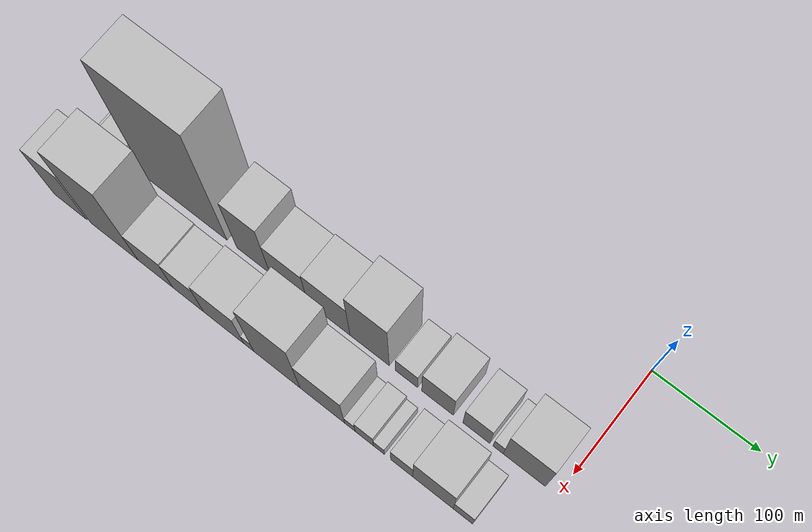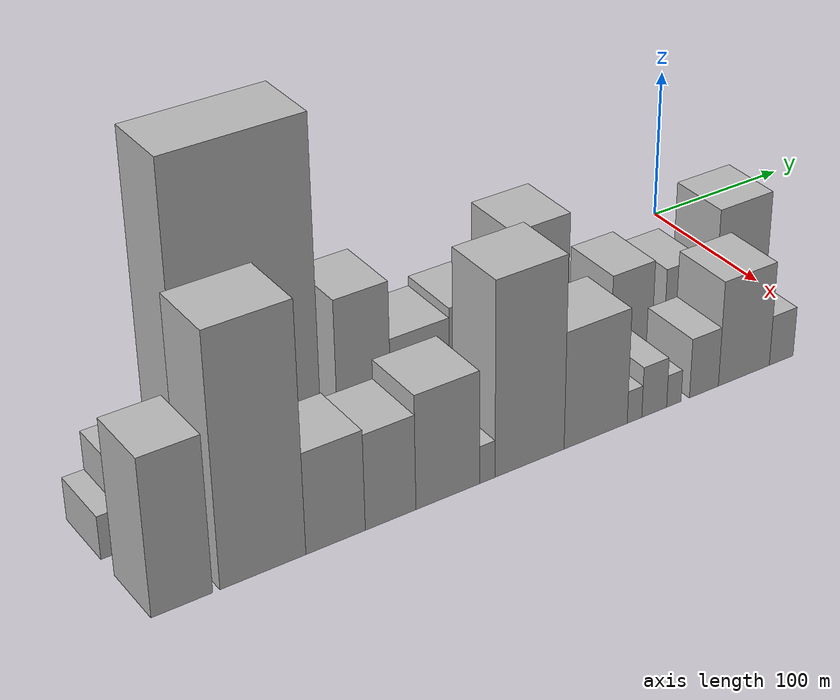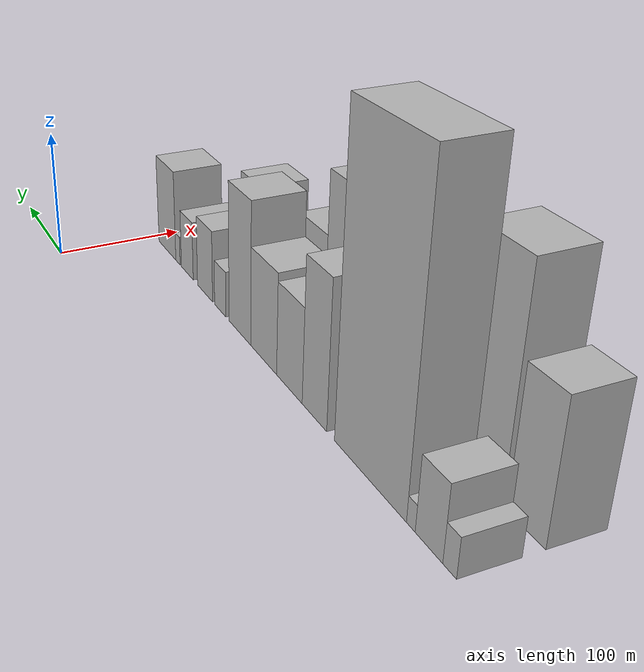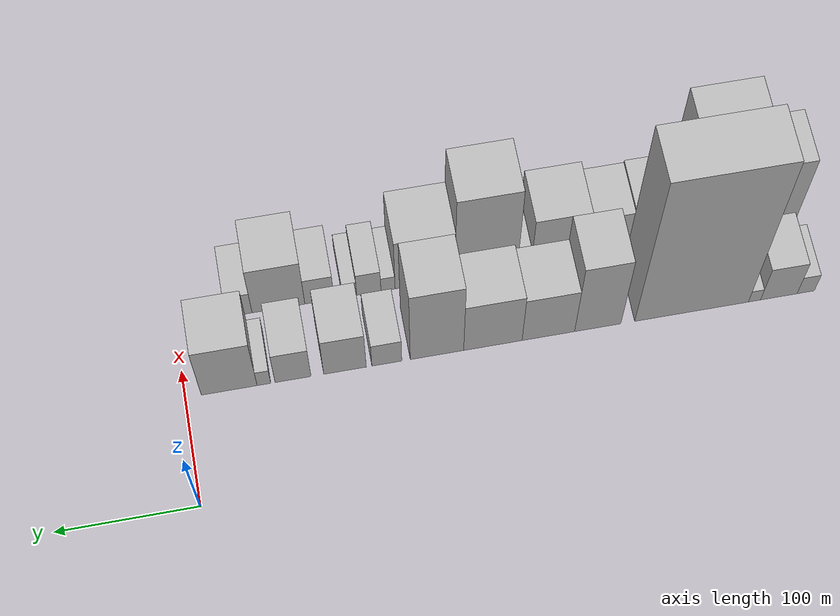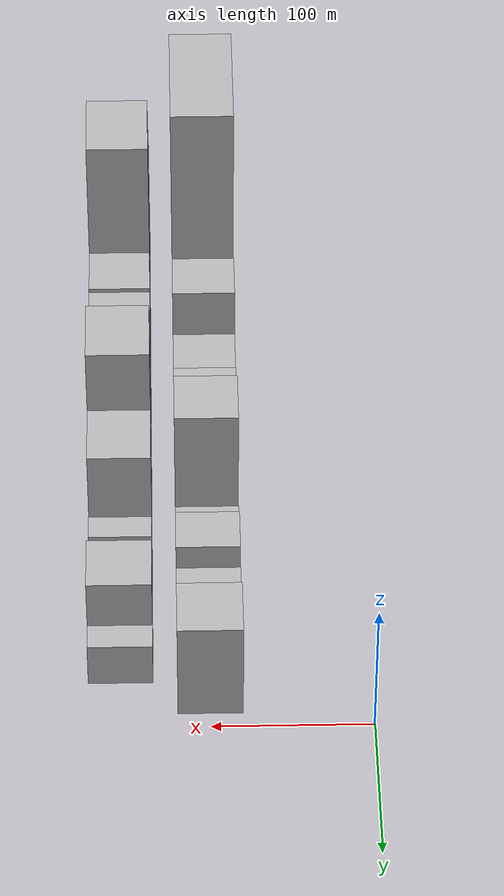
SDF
<sdf version="1.6">
 <world name="default">
  <model name="building_1">
   <static>1</static>
   <pose>100.0000 -443.6787 0 0.000000 0.000000 0.000000</pose>
   <link name="link">
    <pose>0 0 13.50 0 0 0</pose>
    <collision name="collision"><geometry><box><size>40.0000 12.6426 27.0000</size></box></geometry></collision>
    <visual name="visual">
     <cast_shadows>0</cast_shadows>
     <geometry><box><size>40.0000 12.6426 27.0000</size></box></geometry>
     <material>
      <script>
       <uri>model://HANNAS_wall/materials/scripts</uri>
       <uri>model://HANNAS_wall/materials/textures</uri>
       <name>vrc/HANNAS_wall</name>
      </script>
     </material>
    </visual>
   </link>
  </model>
  <model name="building_2">
   <static>1</static>
   <pose>100.0000 -424.0104 0 0.000000 0.000000 0.000000</pose>
   <link name="link">
    <pose>0 0 25.50 0 0 0</pose>
    <collision name="collision"><geometry><box><size>40.0000 26.6941 51.0000</size></box></geometry></collision>
    <visual name="visual">
     <cast_shadows>0</cast_shadows>
     <geometry><box><size>40.0000 26.6941 51.0000</size></box></geometry>
     <material>
      <script>
       <uri>model://HANNAS_wall/materials/scripts</uri>
       <uri>model://HANNAS_wall/materials/textures</uri>
       <name>vrc/HANNAS_wall</name>
      </script>
     </material>
    </visual>
   </link>
  </model>
  <model name="building_3">
   <static>1</static>
   <pose>100.0000 -406.2277 0 0.000000 0.000000 0.000000</pose>
   <link name="link">
    <pose>0 0 9.00 0 0 0</pose>
    <collision name="collision"><geometry><box><size>40.0000 8.8712 18.0000</size></box></geometry></collision>
    <visual name="visual">
     <cast_shadows>0</cast_shadows>
     <geometry><box><size>40.0000 8.8712 18.0000</size></box></geometry>
     <material>
      <script>
       <uri>model://HANNAS_wall/materials/scripts</uri>
       <uri>model://HANNAS_wall/materials/textures</uri>
       <name>vrc/HANNAS_wall</name>
      </script>
     </material>
    </visual>
   </link>
  </model>
  <model name="building_4">
   <static>1</static>
   <pose>100.0000 -360.5033 0 0.000000 0.000000 0.000000</pose>
   <link name="link">
    <pose>0 0 108.00 0 0 0</pose>
    <collision name="collision"><geometry><box><size>40.0000 82.5776 216.0000</size></box></geometry></collision>
    <visual name="visual">
     <cast_shadows>0</cast_shadows>
     <geometry><box><size>40.0000 82.5776 216.0000</size></box></geometry>
     <material>
      <script>
       <uri>model://HANNAS_wall/materials/scripts</uri>
       <uri>model://HANNAS_wall/materials/textures</uri>
       <name>vrc/HANNAS_wall</name>
      </script>
     </material>
    </visual>
   </link>
  </model>
  <model name="building_5">
   <static>1</static>
   <pose>100.0000 -292.5312 0 0.000000 0.000000 0.000000</pose>
   <link name="link">
    <pose>0 0 52.50 0 0 0</pose>
    <collision name="collision"><geometry><box><size>40.0000 33.3666 105.0000</size></box></geometry></collision>
    <visual name="visual">
     <cast_shadows>0</cast_shadows>
     <geometry><box><size>40.0000 33.3666 105.0000</size></box></geometry>
     <material>
      <script>
       <uri>model://HANNAS_wall/materials/scripts</uri>
       <uri>model://HANNAS_wall/materials/textures</uri>
       <name>vrc/HANNAS_wall</name>
      </script>
     </material>
    </visual>
   </link>
  </model>
  <model name="building_6">
   <static>1</static>
   <pose>100.0000 -256.9862 0 0.000000 0.000000 0.000000</pose>
   <link name="link">
    <pose>0 0 34.50 0 0 0</pose>
    <collision name="collision"><geometry><box><size>40.0000 37.7236 69.0000</size></box></geometry></collision>
    <visual name="visual">
     <cast_shadows>0</cast_shadows>
     <geometry><box><size>40.0000 37.7236 69.0000</size></box></geometry>
     <material>
      <script>
       <uri>model://HANNAS_wall/materials/scripts</uri>
       <uri>model://HANNAS_wall/materials/textures</uri>
       <name>vrc/HANNAS_wall</name>
      </script>
     </material>
    </visual>
   </link>
  </model>
  <model name="building_7">
   <static>1</static>
   <pose>100.0000 -217.2485 0 0.000000 0.000000 0.000000</pose>
   <link name="link">
    <pose>0 0 37.50 0 0 0</pose>
    <collision name="collision"><geometry><box><size>40.0000 41.7519 75.0000</size></box></geometry></collision>
    <visual name="visual">
     <cast_shadows>0</cast_shadows>
     <geometry><box><size>40.0000 41.7519 75.0000</size></box></geometry>
     <material>
      <script>
       <uri>model://HANNAS_wall/materials/scripts</uri>
       <uri>model://HANNAS_wall/materials/textures</uri>
       <name>vrc/HANNAS_wall</name>
      </script>
     </material>
    </visual>
   </link>
  </model>
  <model name="building_8">
   <static>1</static>
   <pose>100.0000 -177.3488 0 0.000000 0.000000 0.000000</pose>
   <link name="link">
    <pose>0 0 54.00 0 0 0</pose>
    <collision name="collision"><geometry><box><size>40.0000 38.0475 108.0000</size></box></geometry></collision>
    <visual name="visual">
     <cast_shadows>0</cast_shadows>
     <geometry><box><size>40.0000 38.0475 108.0000</size></box></geometry>
     <material>
      <script>
       <uri>model://HANNAS_wall/materials/scripts</uri>
       <uri>model://HANNAS_wall/materials/textures</uri>
       <name>vrc/HANNAS_wall</name>
      </script>
     </material>
    </visual>
   </link>
  </model>
  <model name="building_9">
   <static>1</static>
   <pose>100.0000 -141.7301 0 0.000000 0.000000 0.000000</pose>
   <link name="link">
    <pose>0 0 18.00 0 0 0</pose>
    <collision name="collision"><geometry><box><size>40.0000 21.1898 36.0000</size></box></geometry></collision>
    <visual name="visual">
     <cast_shadows>0</cast_shadows>
     <geometry><box><size>40.0000 21.1898 36.0000</size></box></geometry>
     <material>
      <script>
       <uri>model://HANNAS_wall/materials/scripts</uri>
       <uri>model://HANNAS_wall/materials/textures</uri>
       <name>vrc/HANNAS_wall</name>
      </script>
     </material>
    </visual>
   </link>
  </model>
  <model name="building_10">
   <static>1</static>
   <pose>100.0000 -112.0870 0 0.000000 0.000000 0.000000</pose>
   <link name="link">
    <pose>0 0 28.50 0 0 0</pose>
    <collision name="collision"><geometry><box><size>40.0000 30.0966 57.0000</size></box></geometry></collision>
    <visual name="visual">
     <cast_shadows>0</cast_shadows>
     <geometry><box><size>40.0000 30.0966 57.0000</size></box></geometry>
     <material>
      <script>
       <uri>model://HANNAS_wall/materials/scripts</uri>
       <uri>model://HANNAS_wall/materials/textures</uri>
       <name>vrc/HANNAS_wall</name>
      </script>
     </material>
    </visual>
   </link>
  </model>
  <model name="building_11">
   <static>1</static>
   <pose>100.0000 -75.4032 0 0.000000 0.000000 0.000000</pose>
   <link name="link">
    <pose>0 0 24.00 0 0 0</pose>
    <collision name="collision"><geometry><box><size>40.0000 25.2710 48.0000</size></box></geometry></collision>
    <visual name="visual">
     <cast_shadows>0</cast_shadows>
     <geometry><box><size>40.0000 25.2710 48.0000</size></box></geometry>
     <material>
      <script>
       <uri>model://HANNAS_wall/materials/scripts</uri>
       <uri>model://HANNAS_wall/materials/textures</uri>
       <name>vrc/HANNAS_wall</name>
      </script>
     </material>
    </visual>
   </link>
  </model>
  <model name="building_12">
   <static>1</static>
   <pose>100.0000 -54.9610 0 0.000000 0.000000 0.000000</pose>
   <link name="link">
    <pose>0 0 12.00 0 0 0</pose>
    <collision name="collision"><geometry><box><size>40.0000 9.6134 24.0000</size></box></geometry></collision>
    <visual name="visual">
     <cast_shadows>0</cast_shadows>
     <geometry><box><size>40.0000 9.6134 24.0000</size></box></geometry>
     <material>
      <script>
       <uri>model://HANNAS_wall/materials/scripts</uri>
       <uri>model://HANNAS_wall/materials/textures</uri>
       <name>vrc/HANNAS_wall</name>
      </script>
     </material>
    </visual>
   </link>
  </model>
  <model name="building_13">
   <static>1</static>
   <pose>100.0000 -30.5853 0 0.000000 0.000000 0.000000</pose>
   <link name="link">
    <pose>0 0 37.50 0 0 0</pose>
    <collision name="collision"><geometry><box><size>40.0000 39.1379 75.0000</size></box></geometry></collision>
    <visual name="visual">
     <cast_shadows>0</cast_shadows>
     <geometry><box><size>40.0000 39.1379 75.0000</size></box></geometry>
     <material>
      <script>
       <uri>model://HANNAS_wall/materials/scripts</uri>
       <uri>model://HANNAS_wall/materials/textures</uri>
       <name>vrc/HANNAS_wall</name>
      </script>
     </material>
    </visual>
   </link>
  </model>
  <model name="building_27">
   <static>1</static>
   <pose>155.0000 -432.9092 0 0.000000 0.000000 0.000000</pose>
   <link name="link">
    <pose>0 0 48.00 0 0 0</pose>
    <collision name="collision"><geometry><box><size>40.0000 34.1816 96.0000</size></box></geometry></collision>
    <visual name="visual">
     <cast_shadows>0</cast_shadows>
     <geometry><box><size>40.0000 34.1816 96.0000</size></box></geometry>
     <material>
      <script>
       <uri>model://HANNAS_wall/materials/scripts</uri>
       <uri>model://HANNAS_wall/materials/textures</uri>
       <name>vrc/HANNAS_wall</name>
      </script>
     </material>
    </visual>
   </link>
  </model>
  <model name="building_28">
   <static>1</static>
   <pose>155.0000 -387.0887 0 0.000000 0.000000 0.000000</pose>
   <link name="link">
    <pose>0 0 76.50 0 0 0</pose>
    <collision name="collision"><geometry><box><size>40.0000 49.4595 153.0000</size></box></geometry></collision>
    <visual name="visual">
     <cast_shadows>0</cast_shadows>
     <geometry><box><size>40.0000 49.4595 153.0000</size></box></geometry>
     <material>
      <script>
       <uri>model://HANNAS_wall/materials/scripts</uri>
       <uri>model://HANNAS_wall/materials/textures</uri>
       <name>vrc/HANNAS_wall</name>
      </script>
     </material>
    </visual>
   </link>
  </model>
  <model name="building_29">
   <static>1</static>
   <pose>155.0000 -344.6442 0 0.000000 0.000000 0.000000</pose>
   <link name="link">
    <pose>0 0 31.50 0 0 0</pose>
    <collision name="collision"><geometry><box><size>40.0000 35.4294 63.0000</size></box></geometry></collision>
    <visual name="visual">
     <cast_shadows>0</cast_shadows>
     <geometry><box><size>40.0000 35.4294 63.0000</size></box></geometry>
     <material>
      <script>
       <uri>model://HANNAS_wall/materials/scripts</uri>
       <uri>model://HANNAS_wall/materials/textures</uri>
       <name>vrc/HANNAS_wall</name>
      </script>
     </material>
    </visual>
   </link>
  </model>
  <model name="building_30">
   <static>1</static>
   <pose>155.0000 -311.4064 0 0.000000 0.000000 0.000000</pose>
   <link name="link">
    <pose>0 0 30.00 0 0 0</pose>
    <collision name="collision"><geometry><box><size>40.0000 31.0463 60.0000</size></box></geometry></collision>
    <visual name="visual">
     <cast_shadows>0</cast_shadows>
     <geometry><box><size>40.0000 31.0463 60.0000</size></box></geometry>
     <material>
      <script>
       <uri>model://HANNAS_wall/materials/scripts</uri>
       <uri>model://HANNAS_wall/materials/textures</uri>
       <name>vrc/HANNAS_wall</name>
      </script>
     </material>
    </visual>
   </link>
  </model>
  <model name="building_31">
   <static>1</static>
   <pose>155.0000 -275.8571 0 0.000000 0.000000 0.000000</pose>
   <link name="link">
    <pose>0 0 36.00 0 0 0</pose>
    <collision name="collision"><geometry><box><size>40.0000 40.0524 72.0000</size></box></geometry></collision>
    <visual name="visual">
     <cast_shadows>0</cast_shadows>
     <geometry><box><size>40.0000 40.0524 72.0000</size></box></geometry>
     <material>
      <script>
       <uri>model://HANNAS_wall/materials/scripts</uri>
       <uri>model://HANNAS_wall/materials/textures</uri>
       <name>vrc/HANNAS_wall</name>
      </script>
     </material>
    </visual>
   </link>
  </model>
  <model name="building_32">
   <static>1</static>
   <pose>155.0000 -250.8228 0 0.000000 0.000000 0.000000</pose>
   <link name="link">
    <pose>0 0 12.00 0 0 0</pose>
    <collision name="collision"><geometry><box><size>40.0000 10.0162 24.0000</size></box></geometry></collision>
    <visual name="visual">
     <cast_shadows>0</cast_shadows>
     <geometry><box><size>40.0000 10.0162 24.0000</size></box></geometry>
     <material>
      <script>
       <uri>model://HANNAS_wall/materials/scripts</uri>
       <uri>model://HANNAS_wall/materials/textures</uri>
       <name>vrc/HANNAS_wall</name>
      </script>
     </material>
    </visual>
   </link>
  </model>
  <model name="building_33">
   <static>1</static>
   <pose>155.0000 -223.0490 0 0.000000 0.000000 0.000000</pose>
   <link name="link">
    <pose>0 0 61.50 0 0 0</pose>
    <collision name="collision"><geometry><box><size>40.0000 45.5314 123.0000</size></box></geometry></collision>
    <visual name="visual">
     <cast_shadows>0</cast_shadows>
     <geometry><box><size>40.0000 45.5314 123.0000</size></box></geometry>
     <material>
      <script>
       <uri>model://HANNAS_wall/materials/scripts</uri>
       <uri>model://HANNAS_wall/materials/textures</uri>
       <name>vrc/HANNAS_wall</name>
      </script>
     </material>
    </visual>
   </link>
  </model>
  <model name="building_34">
   <static>1</static>
   <pose>155.0000 -178.7555 0 0.000000 0.000000 0.000000</pose>
   <link name="link">
    <pose>0 0 37.50 0 0 0</pose>
    <collision name="collision"><geometry><box><size>40.0000 43.0557 75.0000</size></box></geometry></collision>
    <visual name="visual">
     <cast_shadows>0</cast_shadows>
     <geometry><box><size>40.0000 43.0557 75.0000</size></box></geometry>
     <material>
      <script>
       <uri>model://HANNAS_wall/materials/scripts</uri>
       <uri>model://HANNAS_wall/materials/textures</uri>
       <name>vrc/HANNAS_wall</name>
      </script>
     </material>
    </visual>
   </link>
  </model>
  <model name="building_35">
   <static>1</static>
   <pose>155.0000 -152.1327 0 0.000000 0.000000 0.000000</pose>
   <link name="link">
    <pose>0 0 10.50 0 0 0</pose>
    <collision name="collision"><geometry><box><size>40.0000 10.1898 21.0000</size></box></geometry></collision>
    <visual name="visual">
     <cast_shadows>0</cast_shadows>
     <geometry><box><size>40.0000 10.1898 21.0000</size></box></geometry>
     <material>
      <script>
       <uri>model://HANNAS_wall/materials/scripts</uri>
       <uri>model://HANNAS_wall/materials/textures</uri>
       <name>vrc/HANNAS_wall</name>
      </script>
     </material>
    </visual>
   </link>
  </model>
  <model name="building_36">
   <static>1</static>
   <pose>155.0000 -138.2893 0 0.000000 0.000000 0.000000</pose>
   <link name="link">
    <pose>0 0 16.50 0 0 0</pose>
    <collision name="collision"><geometry><box><size>40.0000 17.4970 33.0000</size></box></geometry></collision>
    <visual name="visual">
     <cast_shadows>0</cast_shadows>
     <geometry><box><size>40.0000 17.4970 33.0000</size></box></geometry>
     <material>
      <script>
       <uri>model://HANNAS_wall/materials/scripts</uri>
       <uri>model://HANNAS_wall/materials/textures</uri>
       <name>vrc/HANNAS_wall</name>
      </script>
     </material>
    </visual>
   </link>
  </model>
  <model name="building_37">
   <static>1</static>
   <pose>155.0000 -124.4014 0 0.000000 0.000000 0.000000</pose>
   <link name="link">
    <pose>0 0 10.50 0 0 0</pose>
    <collision name="collision"><geometry><box><size>40.0000 10.2790 21.0000</size></box></geometry></collision>
    <visual name="visual">
     <cast_shadows>0</cast_shadows>
     <geometry><box><size>40.0000 10.2790 21.0000</size></box></geometry>
     <material>
      <script>
       <uri>model://HANNAS_wall/materials/scripts</uri>
       <uri>model://HANNAS_wall/materials/textures</uri>
       <name>vrc/HANNAS_wall</name>
      </script>
     </material>
    </visual>
   </link>
  </model>
  <model name="building_38">
   <static>1</static>
   <pose>155.0000 -102.7857 0 0.000000 0.000000 0.000000</pose>
   <link name="link">
    <pose>0 0 19.50 0 0 0</pose>
    <collision name="collision"><geometry><box><size>40.0000 20.9523 39.0000</size></box></geometry></collision>
    <visual name="visual">
     <cast_shadows>0</cast_shadows>
     <geometry><box><size>40.0000 20.9523 39.0000</size></box></geometry>
     <material>
      <script>
       <uri>model://HANNAS_wall/materials/scripts</uri>
       <uri>model://HANNAS_wall/materials/textures</uri>
       <name>vrc/HANNAS_wall</name>
      </script>
     </material>
    </visual>
   </link>
  </model>
  <model name="building_39">
   <static>1</static>
   <pose>155.0000 -73.4619 0 0.000000 0.000000 0.000000</pose>
   <link name="link">
    <pose>0 0 34.50 0 0 0</pose>
    <collision name="collision"><geometry><box><size>40.0000 37.6953 69.0000</size></box></geometry></collision>
    <visual name="visual">
     <cast_shadows>0</cast_shadows>
     <geometry><box><size>40.0000 37.6953 69.0000</size></box></geometry>
     <material>
      <script>
       <uri>model://HANNAS_wall/materials/scripts</uri>
       <uri>model://HANNAS_wall/materials/textures</uri>
       <name>vrc/HANNAS_wall</name>
      </script>
     </material>
    </visual>
   </link>
  </model>
  <model name="building_40">
   <static>1</static>
   <pose>155.0000 -45.6247 0 0.000000 0.000000 0.000000</pose>
   <link name="link">
    <pose>0 0 16.50 0 0 0</pose>
    <collision name="collision"><geometry><box><size>40.0000 17.9792 33.0000</size></box></geometry></collision>
    <visual name="visual">
     <cast_shadows>0</cast_shadows>
     <geometry><box><size>40.0000 17.9792 33.0000</size></box></geometry>
     <material>
      <script>
       <uri>model://HANNAS_wall/materials/scripts</uri>
       <uri>model://HANNAS_wall/materials/textures</uri>
       <name>vrc/HANNAS_wall</name>
      </script>
     </material>
    </visual>
   </link>
  </model>
 </world>
</sdf>
